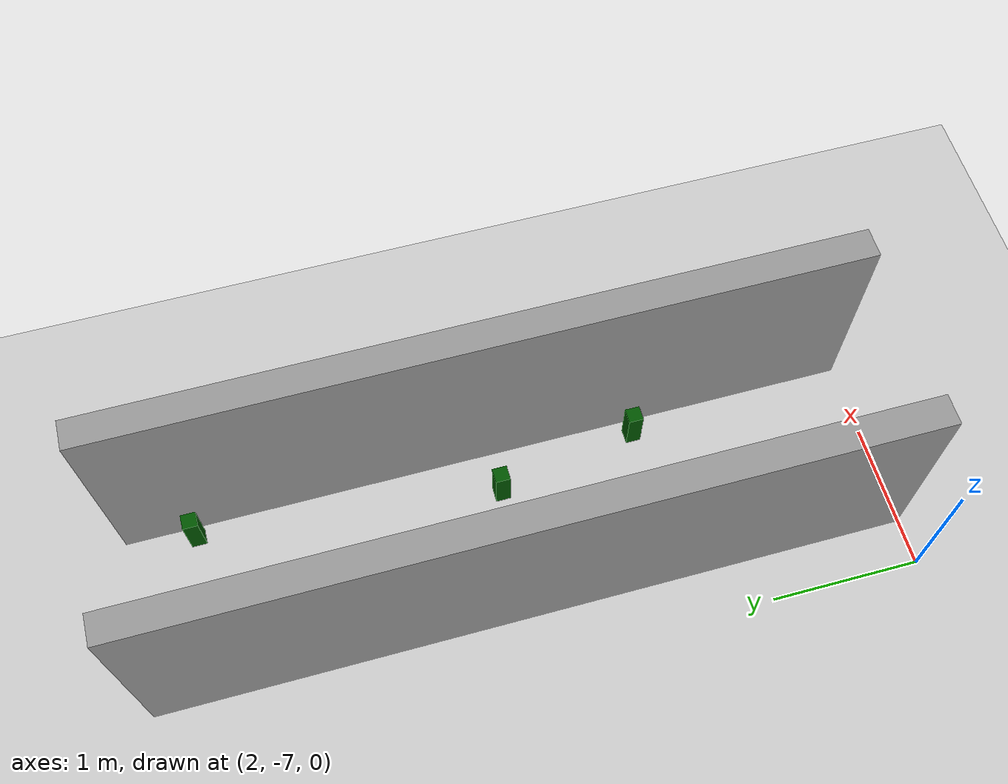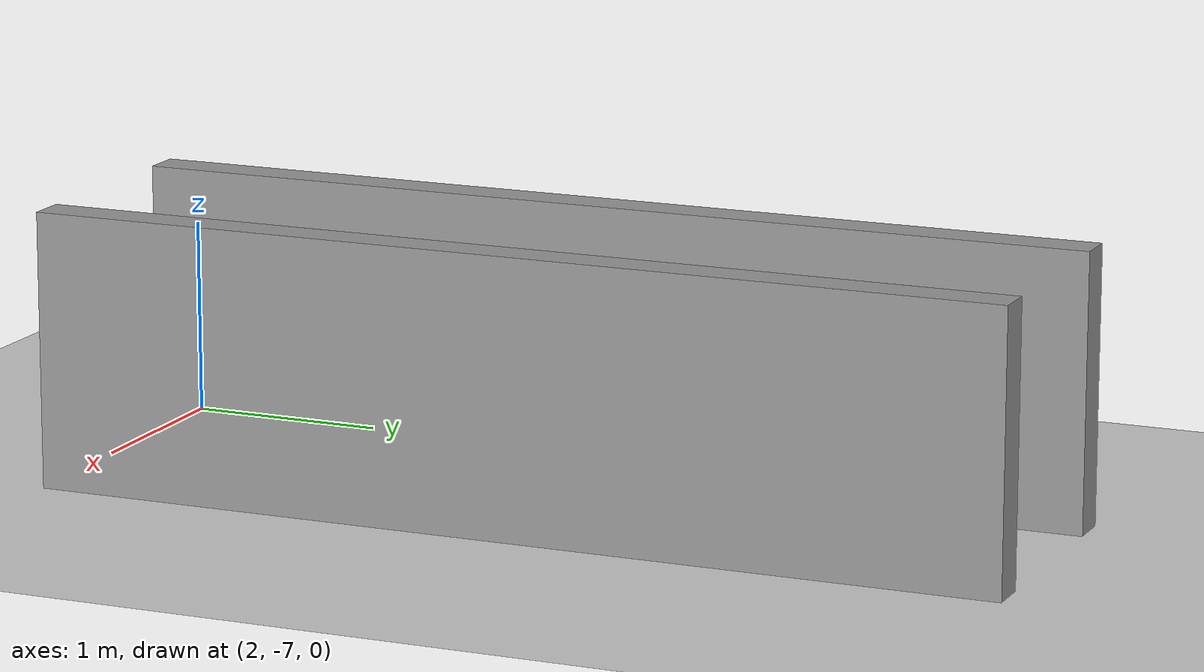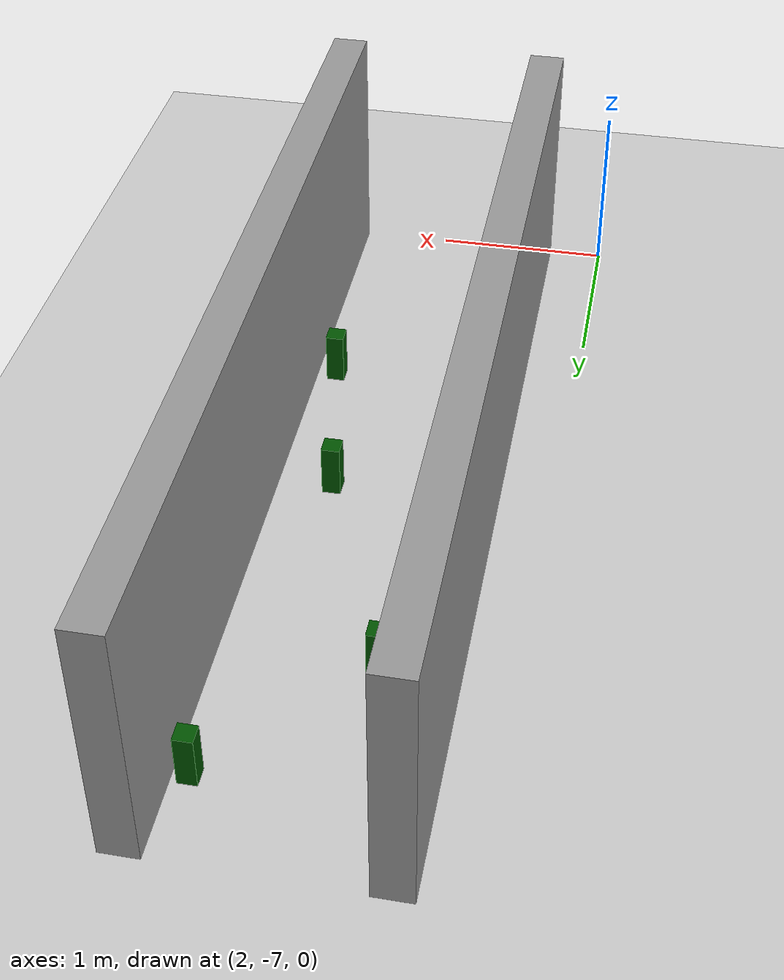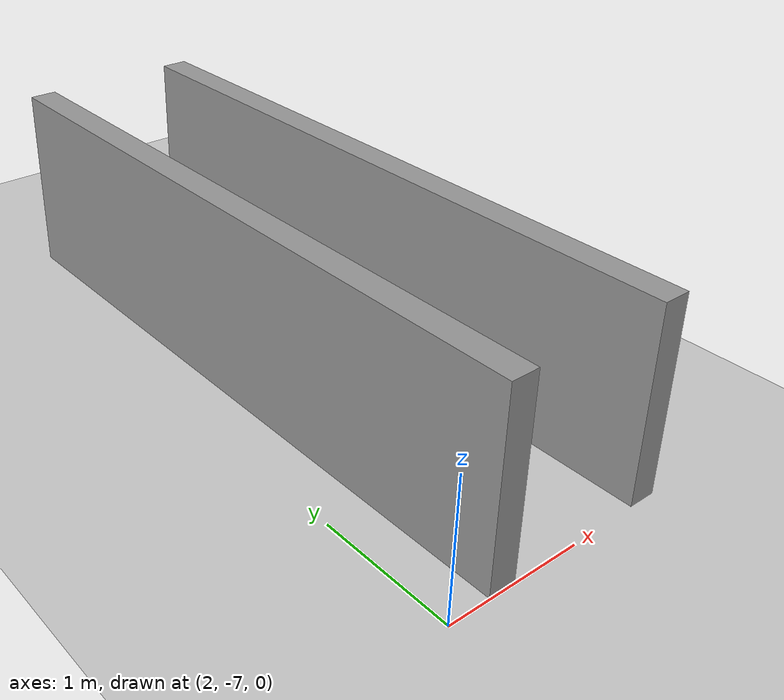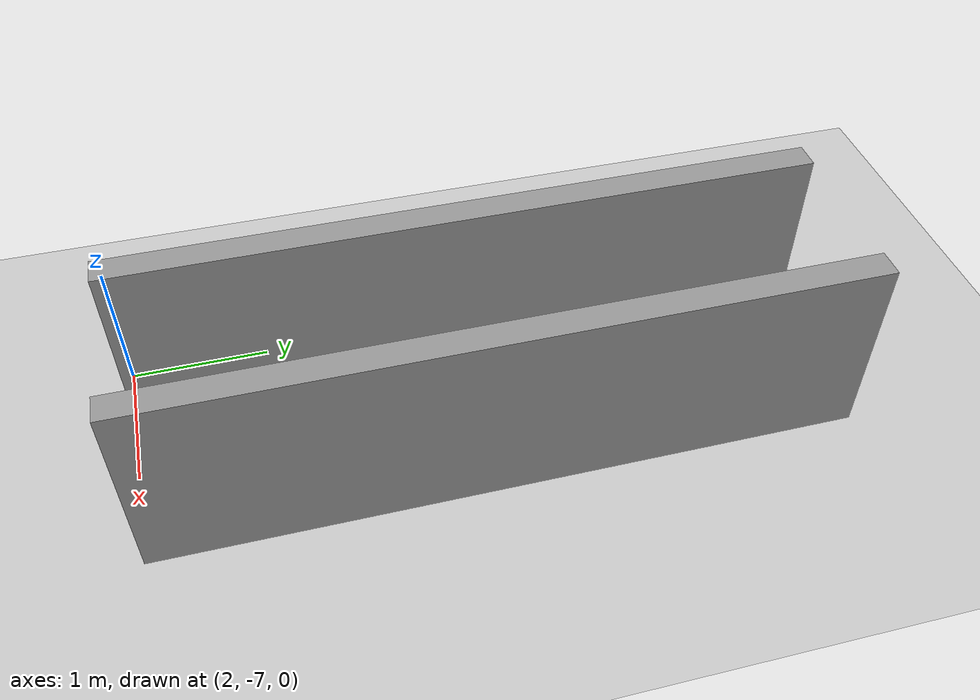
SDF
<sdf version="1.7">
 <world name="default">
  <light name="sun" type="directional">
   <pose>0 0 10 0 -0 0</pose>
   <diffuse>0.8 0.8 0.8 1</diffuse>
   <specular>0.2 0.2 0.2 1</specular>
   <attenuation>
    <range>1000</range>
    <constant>0.9</constant>
    <linear>0.01</linear>
    <quadratic>0.001</quadratic>
   </attenuation>
   <direction>-0.5 0.1 -0.9</direction>
   <spot><inner_angle>0</inner_angle><outer_angle>0</outer_angle><falloff>0</falloff></spot>
  </light>
  <model name="ground_plane">
   <static>1</static>
   <link name="link">
    <collision name="collision">
     <geometry><plane><normal>0 0 1</normal><size>100 100</size></plane></geometry>
     <surface>
      <contact><collide_bitmask>65535</collide_bitmask></contact>
      <friction><ode><mu>100</mu><mu2>50</mu2></ode></friction>
     </surface>
    </collision>
    <visual name="visual">
     <cast_shadows>0</cast_shadows>
     <geometry><plane><normal>0 0 1</normal><size>100 100</size></plane></geometry>
     <material>
      <script><uri>file://media/materials/scripts/gazebo.material</uri><name>Gazebo/Grey</name></script>
     </material>
    </visual>
   </link>
  </model>
  <gravity>0 0 -9.8</gravity>
  <magnetic_field>6e-06 2.3e-05 -4.2e-05</magnetic_field>
  <atmosphere type="adiabatic"/>
  <physics type="ode">
   <max_step_size>0.001</max_step_size>
   <real_time_factor>1</real_time_factor>
   <real_time_update_rate>1000</real_time_update_rate>
  </physics>
  <scene><ambient>0.4 0.4 0.4 1</ambient><background>0.7 0.7 0.7 1</background><shadows>1</shadows></scene>
  <spherical_coordinates>
   <surface_model>EARTH_WGS84</surface_model>
   <latitude_deg>0</latitude_deg>
   <longitude_deg>0</longitude_deg>
   <elevation>0</elevation>
   <heading_deg>0</heading_deg>
  </spherical_coordinates>
  <model name="grey_wall_5">
   <link name="link">
    <pose>0 0 0.7 0 -0 0</pose>
    <inertial>
     <mass>1</mass>
     <inertia><ixx>1</ixx><ixy>0</ixy><ixz>0</ixz><iyy>1</iyy><iyz>0</iyz><izz>1</izz></inertia>
    </inertial>
    <visual name="visual">
     <cast_shadows>0</cast_shadows>
     <geometry><box><size>5 0.2 1.4</size></box></geometry>
     <material>
      <script>
       <uri>model://grey_wall/materials/scripts</uri>
       <uri>model://grey_wall/materials/textures</uri>
       <name>vrc/grey_wall</name>
      </script>
      <shader type="pixel"><normal_map>__default__</normal_map></shader>
      <ambient>1 1 1 1</ambient>
      <diffuse>1 1 1 1</diffuse>
      <specular>0 0 0 1</specular>
      <emissive>0 0 0 1</emissive>
     </material>
    </visual>
    <collision name="collision">
     <geometry><box><size>5 0.2 1.4</size></box></geometry>
     <surface>
      <friction>
       <ode><mu>1</mu><mu2>1</mu2><fdir1>0 0 0</fdir1><slip1>0</slip1><slip2>0</slip2></ode>
       <torsional>
        <coefficient>1</coefficient>
        <patch_radius>0</patch_radius>
        <surface_radius>0</surface_radius>
        <use_patch_radius>1</use_patch_radius>
        <ode><slip>0</slip></ode>
       </torsional>
      </friction>
      <bounce><restitution_coefficient>0</restitution_coefficient><threshold>1e+06</threshold></bounce>
      <contact>
       <collide_without_contact>0</collide_without_contact>
       <collide_without_contact_bitmask>1</collide_without_contact_bitmask>
       <collide_bitmask>1</collide_bitmask>
       <ode>
        <soft_cfm>0</soft_cfm>
        <soft_erp>0.2</soft_erp>
        <kp>1e+13</kp>
        <kd>1</kd>
        <max_vel>0.01</max_vel>
        <min_depth>0</min_depth>
       </ode>
       <bullet>
        <split_impulse>1</split_impulse>
        <split_impulse_penetration_threshold>-0.01</split_impulse_penetration_threshold>
        <soft_cfm>0</soft_cfm>
        <soft_erp>0.2</soft_erp>
        <kp>1e+13</kp>
        <kd>1</kd>
       </bullet>
      </contact>
     </surface>
    </collision>
   </link>
   <static>1</static>
   <pose>3.61703 -4.49301 0 0 0 -1.57015</pose>
  </model>
  <model name="grey_wall_5_clone">
   <link name="link">
    <pose>0 0 0.7 0 -0 0</pose>
    <inertial>
     <mass>1</mass>
     <inertia><ixx>1</ixx><ixy>0</ixy><ixz>0</ixz><iyy>1</iyy><iyz>0</iyz><izz>1</izz></inertia>
    </inertial>
    <visual name="visual">
     <cast_shadows>0</cast_shadows>
     <geometry><box><size>5 0.2 1.4</size></box></geometry>
     <material>
      <script>
       <uri>model://grey_wall/materials/scripts</uri>
       <uri>model://grey_wall/materials/textures</uri>
       <name>vrc/grey_wall</name>
      </script>
      <shader type="pixel"><normal_map>__default__</normal_map></shader>
      <ambient>1 1 1 1</ambient>
      <diffuse>1 1 1 1</diffuse>
      <specular>0 0 0 1</specular>
      <emissive>0 0 0 1</emissive>
     </material>
    </visual>
    <collision name="collision">
     <geometry><box><size>5 0.2 1.4</size></box></geometry>
     <surface>
      <friction>
       <ode><mu>1</mu><mu2>1</mu2><fdir1>0 0 0</fdir1><slip1>0</slip1><slip2>0</slip2></ode>
       <torsional>
        <coefficient>1</coefficient>
        <patch_radius>0</patch_radius>
        <surface_radius>0</surface_radius>
        <use_patch_radius>1</use_patch_radius>
        <ode><slip>0</slip></ode>
       </torsional>
      </friction>
      <bounce><restitution_coefficient>0</restitution_coefficient><threshold>1e+06</threshold></bounce>
      <contact>
       <collide_without_contact>0</collide_without_contact>
       <collide_without_contact_bitmask>1</collide_without_contact_bitmask>
       <collide_bitmask>1</collide_bitmask>
       <ode>
        <soft_cfm>0</soft_cfm>
        <soft_erp>0.2</soft_erp>
        <kp>1e+13</kp>
        <kd>1</kd>
        <max_vel>0.01</max_vel>
        <min_depth>0</min_depth>
       </ode>
       <bullet>
        <split_impulse>1</split_impulse>
        <split_impulse_penetration_threshold>-0.01</split_impulse_penetration_threshold>
        <soft_cfm>0</soft_cfm>
        <soft_erp>0.2</soft_erp>
        <kp>1e+13</kp>
        <kd>1</kd>
       </bullet>
      </contact>
     </surface>
    </collision>
   </link>
   <static>1</static>
   <pose>2.40876 -4.49392 0 0 0 -1.57015</pose>
  </model>
  <model name="unit_box_10cm">
   <link name="link">
    <inertial>
     <mass>1</mass>
     <inertia>
      <ixx>0.166667</ixx>
      <ixy>0</ixy>
      <ixz>0</ixz>
      <iyy>0.166667</iyy>
      <iyz>0</iyz>
      <izz>0.166667</izz>
     </inertia>
    </inertial>
    <pose>-0 -0 0.15 0 -0 0</pose>
    <visual name="visual">
     <geometry><box><size>0.1 0.1 0.3</size></box></geometry>
     <material>
      <script><name>Gazebo/Grey</name><uri>file://media/materials/scripts/gazebo.material</uri></script>
      <shader type="pixel"><normal_map>__default__</normal_map></shader>
      <ambient>0.3 0.3 0.3 1</ambient>
      <diffuse>0 0.333 0 1</diffuse>
      <specular>0.01 0.01 0.01 1</specular>
      <emissive>0 0 0 1</emissive>
     </material>
    </visual>
    <collision name="collision">
     <geometry><box><size>0.1 0.1 0.3</size></box></geometry>
     <surface>
      <friction>
       <ode><mu>1</mu><mu2>1</mu2><fdir1>0 0 0</fdir1><slip1>0</slip1><slip2>0</slip2></ode>
       <torsional>
        <coefficient>1</coefficient>
        <patch_radius>0</patch_radius>
        <surface_radius>0</surface_radius>
        <use_patch_radius>1</use_patch_radius>
        <ode><slip>0</slip></ode>
       </torsional>
      </friction>
      <bounce><restitution_coefficient>0</restitution_coefficient><threshold>1e+06</threshold></bounce>
      <contact>
       <collide_without_contact>0</collide_without_contact>
       <collide_without_contact_bitmask>1</collide_without_contact_bitmask>
       <collide_bitmask>1</collide_bitmask>
       <ode>
        <soft_cfm>0</soft_cfm>
        <soft_erp>0.2</soft_erp>
        <kp>1e+13</kp>
        <kd>1</kd>
        <max_vel>0.01</max_vel>
        <min_depth>0</min_depth>
       </ode>
       <bullet>
        <split_impulse>1</split_impulse>
        <split_impulse_penetration_threshold>-0.01</split_impulse_penetration_threshold>
        <soft_cfm>0</soft_cfm>
        <soft_erp>0.2</soft_erp>
        <kp>1e+13</kp>
        <kd>1</kd>
       </bullet>
      </contact>
     </surface>
    </collision>
   </link>
   <static>0</static>
   <pose>2.62594 -6.46266 0 0 0 -4.1e-05</pose>
  </model>
  <model name="unit_box_10cm_clone">
   <link name="link">
    <inertial>
     <mass>1</mass>
     <inertia>
      <ixx>0.166667</ixx>
      <ixy>0</ixy>
      <ixz>0</ixz>
      <iyy>0.166667</iyy>
      <iyz>0</iyz>
      <izz>0.166667</izz>
     </inertia>
    </inertial>
    <pose>-0 -0 0.15 0 -0 0</pose>
    <visual name="visual">
     <geometry><box><size>0.1 0.1 0.3</size></box></geometry>
     <material>
      <script><name>Gazebo/Grey</name><uri>file://media/materials/scripts/gazebo.material</uri></script>
      <shader type="pixel"><normal_map>__default__</normal_map></shader>
      <ambient>0.3 0.3 0.3 1</ambient>
      <diffuse>0 0.333 0 1</diffuse>
      <specular>0.01 0.01 0.01 1</specular>
      <emissive>0 0 0 1</emissive>
     </material>
    </visual>
    <collision name="collision">
     <geometry><box><size>0.1 0.1 0.3</size></box></geometry>
     <surface>
      <friction>
       <ode><mu>1</mu><mu2>1</mu2><fdir1>0 0 0</fdir1><slip1>0</slip1><slip2>0</slip2></ode>
       <torsional>
        <coefficient>1</coefficient>
        <patch_radius>0</patch_radius>
        <surface_radius>0</surface_radius>
        <use_patch_radius>1</use_patch_radius>
        <ode><slip>0</slip></ode>
       </torsional>
      </friction>
      <bounce><restitution_coefficient>0</restitution_coefficient><threshold>1e+06</threshold></bounce>
      <contact>
       <collide_without_contact>0</collide_without_contact>
       <collide_without_contact_bitmask>1</collide_without_contact_bitmask>
       <collide_bitmask>1</collide_bitmask>
       <ode>
        <soft_cfm>0</soft_cfm>
        <soft_erp>0.2</soft_erp>
        <kp>1e+13</kp>
        <kd>1</kd>
        <max_vel>0.01</max_vel>
        <min_depth>0</min_depth>
       </ode>
       <bullet>
        <split_impulse>1</split_impulse>
        <split_impulse_penetration_threshold>-0.01</split_impulse_penetration_threshold>
        <soft_cfm>0</soft_cfm>
        <soft_erp>0.2</soft_erp>
        <kp>1e+13</kp>
        <kd>1</kd>
       </bullet>
      </contact>
     </surface>
    </collision>
   </link>
   <static>0</static>
   <pose>3.40391 -5.47041 0 0 0 -4.1e-05</pose>
  </model>
  <model name="unit_box_10cm_clone_0">
   <link name="link">
    <inertial>
     <mass>1</mass>
     <inertia>
      <ixx>0.166667</ixx>
      <ixy>0</ixy>
      <ixz>0</ixz>
      <iyy>0.166667</iyy>
      <iyz>0</iyz>
      <izz>0.166667</izz>
     </inertia>
    </inertial>
    <pose>-0 -0 0.15 0 -0 0</pose>
    <visual name="visual">
     <geometry><box><size>0.1 0.1 0.3</size></box></geometry>
     <material>
      <script><name>Gazebo/Grey</name><uri>file://media/materials/scripts/gazebo.material</uri></script>
      <shader type="pixel"><normal_map>__default__</normal_map></shader>
      <ambient>0.3 0.3 0.3 1</ambient>
      <diffuse>0 0.333 0 1</diffuse>
      <specular>0.01 0.01 0.01 1</specular>
      <emissive>0 0 0 1</emissive>
     </material>
    </visual>
    <collision name="collision">
     <geometry><box><size>0.1 0.1 0.3</size></box></geometry>
     <surface>
      <friction>
       <ode><mu>1</mu><mu2>1</mu2><fdir1>0 0 0</fdir1><slip1>0</slip1><slip2>0</slip2></ode>
       <torsional>
        <coefficient>1</coefficient>
        <patch_radius>0</patch_radius>
        <surface_radius>0</surface_radius>
        <use_patch_radius>1</use_patch_radius>
        <ode><slip>0</slip></ode>
       </torsional>
      </friction>
      <bounce><restitution_coefficient>0</restitution_coefficient><threshold>1e+06</threshold></bounce>
      <contact>
       <collide_without_contact>0</collide_without_contact>
       <collide_without_contact_bitmask>1</collide_without_contact_bitmask>
       <collide_bitmask>1</collide_bitmask>
       <ode>
        <soft_cfm>0</soft_cfm>
        <soft_erp>0.2</soft_erp>
        <kp>1e+13</kp>
        <kd>1</kd>
        <max_vel>0.01</max_vel>
        <min_depth>0</min_depth>
       </ode>
       <bullet>
        <split_impulse>1</split_impulse>
        <split_impulse_penetration_threshold>-0.01</split_impulse_penetration_threshold>
        <soft_cfm>0</soft_cfm>
        <soft_erp>0.2</soft_erp>
        <kp>1e+13</kp>
        <kd>1</kd>
       </bullet>
      </contact>
     </surface>
    </collision>
   </link>
   <static>0</static>
   <pose>3.21408 -4.49411 0 0 0 -4.1e-05</pose>
  </model>
  <model name="unit_box_10cm_clone_1">
   <link name="link">
    <inertial>
     <mass>1</mass>
     <inertia>
      <ixx>0.166667</ixx>
      <ixy>0</ixy>
      <ixz>0</ixz>
      <iyy>0.166667</iyy>
      <iyz>0</iyz>
      <izz>0.166667</izz>
     </inertia>
    </inertial>
    <pose>-0 -0 0.15 0 -0 0</pose>
    <visual name="visual">
     <geometry><box><size>0.1 0.1 0.3</size></box></geometry>
     <material>
      <script><name>Gazebo/Grey</name><uri>file://media/materials/scripts/gazebo.material</uri></script>
      <shader type="pixel"><normal_map>__default__</normal_map></shader>
      <ambient>0.3 0.3 0.3 1</ambient>
      <diffuse>0 0.333 0 1</diffuse>
      <specular>0.01 0.01 0.01 1</specular>
      <emissive>0 0 0 1</emissive>
     </material>
    </visual>
    <collision name="collision">
     <geometry><box><size>0.1 0.1 0.3</size></box></geometry>
     <surface>
      <friction>
       <ode><mu>1</mu><mu2>1</mu2><fdir1>0 0 0</fdir1><slip1>0</slip1><slip2>0</slip2></ode>
       <torsional>
        <coefficient>1</coefficient>
        <patch_radius>0</patch_radius>
        <surface_radius>0</surface_radius>
        <use_patch_radius>1</use_patch_radius>
        <ode><slip>0</slip></ode>
       </torsional>
      </friction>
      <bounce><restitution_coefficient>0</restitution_coefficient><threshold>1e+06</threshold></bounce>
      <contact>
       <collide_without_contact>0</collide_without_contact>
       <collide_without_contact_bitmask>1</collide_without_contact_bitmask>
       <collide_bitmask>1</collide_bitmask>
       <ode>
        <soft_cfm>0</soft_cfm>
        <soft_erp>0.2</soft_erp>
        <kp>1e+13</kp>
        <kd>1</kd>
        <max_vel>0.01</max_vel>
        <min_depth>0</min_depth>
       </ode>
       <bullet>
        <split_impulse>1</split_impulse>
        <split_impulse_penetration_threshold>-0.01</split_impulse_penetration_threshold>
        <soft_cfm>0</soft_cfm>
        <soft_erp>0.2</soft_erp>
        <kp>1e+13</kp>
        <kd>1</kd>
       </bullet>
      </contact>
     </surface>
    </collision>
   </link>
   <static>0</static>
   <pose>2.7143 -3.23112 0 0 0 -4.1e-05</pose>
  </model>
  <model name="unit_box_10cm_clone_2">
   <link name="link">
    <inertial>
     <mass>1</mass>
     <inertia>
      <ixx>0.166667</ixx>
      <ixy>0</ixy>
      <ixz>0</ixz>
      <iyy>0.166667</iyy>
      <iyz>0</iyz>
      <izz>0.166667</izz>
     </inertia>
    </inertial>
    <pose>-0 -0 0.15 0 -0 0</pose>
    <visual name="visual">
     <geometry><box><size>0.1 0.1 0.3</size></box></geometry>
     <material>
      <script><name>Gazebo/Grey</name><uri>file://media/materials/scripts/gazebo.material</uri></script>
      <shader type="pixel"><normal_map>__default__</normal_map></shader>
      <ambient>0.3 0.3 0.3 1</ambient>
      <diffuse>0 0.333 0 1</diffuse>
      <specular>0.01 0.01 0.01 1</specular>
      <emissive>0 0 0 1</emissive>
     </material>
    </visual>
    <collision name="collision">
     <geometry><box><size>0.1 0.1 0.3</size></box></geometry>
     <surface>
      <friction>
       <ode><mu>1</mu><mu2>1</mu2><fdir1>0 0 0</fdir1><slip1>0</slip1><slip2>0</slip2></ode>
       <torsional>
        <coefficient>1</coefficient>
        <patch_radius>0</patch_radius>
        <surface_radius>0</surface_radius>
        <use_patch_radius>1</use_patch_radius>
        <ode><slip>0</slip></ode>
       </torsional>
      </friction>
      <bounce><restitution_coefficient>0</restitution_coefficient><threshold>1e+06</threshold></bounce>
      <contact>
       <collide_without_contact>0</collide_without_contact>
       <collide_without_contact_bitmask>1</collide_without_contact_bitmask>
       <collide_bitmask>1</collide_bitmask>
       <ode>
        <soft_cfm>0</soft_cfm>
        <soft_erp>0.2</soft_erp>
        <kp>1e+13</kp>
        <kd>1</kd>
        <max_vel>0.01</max_vel>
        <min_depth>0</min_depth>
       </ode>
       <bullet>
        <split_impulse>1</split_impulse>
        <split_impulse_penetration_threshold>-0.01</split_impulse_penetration_threshold>
        <soft_cfm>0</soft_cfm>
        <soft_erp>0.2</soft_erp>
        <kp>1e+13</kp>
        <kd>1</kd>
       </bullet>
      </contact>
     </surface>
    </collision>
   </link>
   <static>0</static>
   <pose>3.43103 -2.46403 0 0 0 -4.1e-05</pose>
  </model>
 </world>
</sdf>
